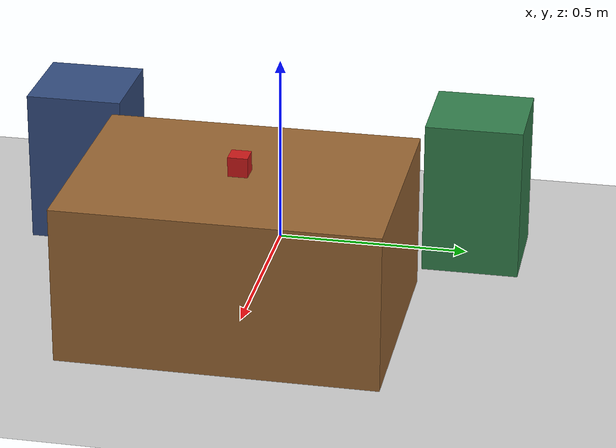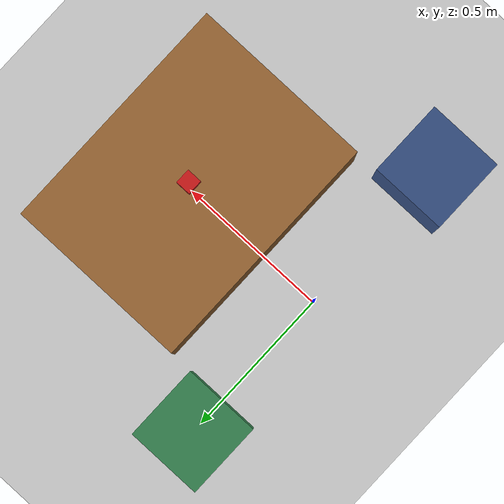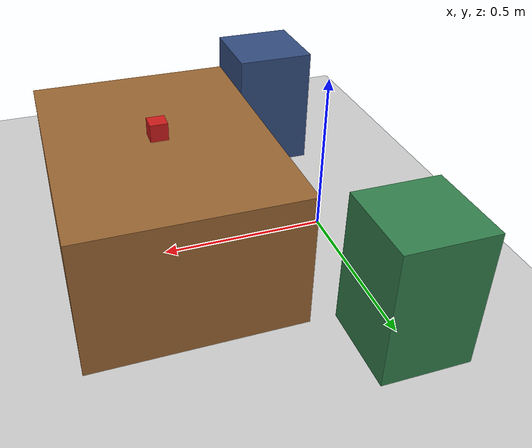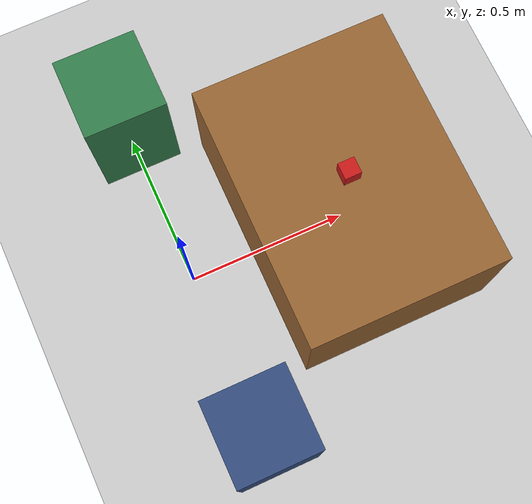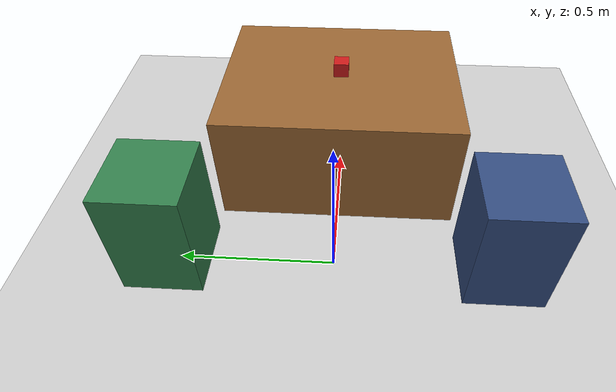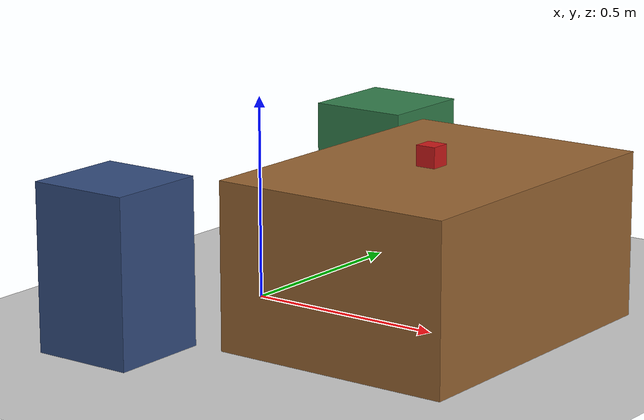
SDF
<?xml version="1.0" ?>
<sdf version="1.8">
  <world name="fr3_world">
    <physics name="1ms" type="ignored">
      <max_step_size>0.001</max_step_size>
      <real_time_factor>0</real_time_factor>
    </physics>
    <plugin
      filename="gz-sim-physics-system"
      name="gz::sim::systems::Physics">
    </plugin>
    <plugin
      filename="gz-sim-user-commands-system"
      name="gz::sim::systems::UserCommands">
    </plugin>
    <plugin
      filename="gz-sim-scene-broadcaster-system"
      name="gz::sim::systems::SceneBroadcaster">
    </plugin>

    <gui fullscreen="0">
      <!-- 3D scene -->
      <plugin filename="MinimalScene" name="3D View">
        <gz-gui>
          <title>3D View</title>
          <property type="bool" key="showTitleBar">false</property>
          <property type="string" key="state">docked</property>
        </gz-gui>

        <engine>ogre2</engine>
        <scene>scene</scene>
        <ambient_light>0.4 0.4 0.4</ambient_light>
        <background_color>0.8 0.8 0.8</background_color>
        <camera_pose>-6 0 6 0 0.5 0</camera_pose>
        <camera_clip>
          <near>0.25</near>
          <far>25000</far>
        </camera_clip>
      </plugin>
      <plugin filename="GzSceneManager" name="Scene Manager">
        <gz-gui>
          <property key="resizable" type="bool">false</property>
          <property key="width" type="double">5</property>
          <property key="height" type="double">5</property>
          <property key="state" type="string">floating</property>
          <property key="showTitleBar" type="bool">false</property>
        </gz-gui>
      </plugin>

      <!-- World control -->
      <plugin filename="WorldControl" name="World control">
        <gz-gui>
          <title>World control</title>
          <property type="bool" key="showTitleBar">false</property>
          <property type="bool" key="resizable">false</property>
          <property type="double" key="height">72</property>
          <property type="double" key="width">121</property>
          <property type="double" key="z">1</property>

          <property type="string" key="state">floating</property>
          <anchors target="3D View">
            <line own="left" target="left"/>
            <line own="bottom" target="bottom"/>
          </anchors>
        </gz-gui>

        <play_pause>true</play_pause>
        <step>true</step>
        <start_paused>true</start_paused>
        <service>/world/fr3_world/control</service>
        <stats_topic>/world/fr3_world/stats</stats_topic>
      </plugin>

      <!-- World statistics -->
      <plugin filename="WorldStats" name="World stats">
        <gz-gui>
          <title>World stats</title>
          <property type="bool" key="showTitleBar">false</property>
          <property type="bool" key="resizable">false</property>
          <property type="double" key="height">110</property>
          <property type="double" key="width">290</property>
          <property type="double" key="z">1</property>

          <property type="string" key="state">floating</property>
          <anchors target="3D View">
            <line own="right" target="right"/>
            <line own="bottom" target="bottom"/>
          </anchors>
        </gz-gui>

        <sim_time>true</sim_time>
        <real_time>true</real_time>
        <real_time_factor>true</real_time_factor>
        <iterations>true</iterations>
        <topic>/world/fr3_world/stats</topic>
      </plugin>
    </gui>

    <light type="directional" name="sun">
      <cast_shadows>true</cast_shadows>
      <pose>0 0 10 0 0 0</pose>
      <diffuse>0.8 0.8 0.8 1</diffuse>
      <specular>0.2 0.2 0.2 1</specular>
      <attenuation>
        <range>1000</range>
        <constant>0.9</constant>
        <linear>0.01</linear>
        <quadratic>0.001</quadratic>
      </attenuation>
      <direction>-0.5 0.1 -0.9</direction>
    </light>

    <model name="ground_plane">
      <static>true</static>
      <link name="link">
        <collision name="collision">
          <geometry>
            <plane><normal>0 0 1</normal><size>100 100</size></plane>
          </geometry>
        </collision>
        <visual name="visual">
          <geometry>
            <plane><normal>0 0 1</normal><size>100 100</size></plane>
          </geometry>
          <material>
            <ambient>0.8 0.8 0.8 1</ambient>
            <diffuse>0.8 0.8 0.8 1</diffuse>
          </material>
        </visual>
      </link>
    </model>

    <model name="table">
      <static>true</static>
      <pose>0.5 0 0.2 0 0 0</pose>
      <link name="link">
        <collision name="collision">
          <geometry>
            <box><size>0.6 0.8 0.4</size></box>
          </geometry>
        </collision>
        <visual name="visual">
          <geometry>
            <box><size>0.6 0.8 0.4</size></box>
          </geometry>
          <material>
            <ambient>0.6 0.4 0.2 1</ambient>
            <diffuse>0.6 0.4 0.2 1</diffuse>
          </material>
        </visual>
      </link>
    </model>

    <!-- Two tables on each side of the robot (90 deg) -->
    <model name="table_left">
      <static>true</static>
      <pose>0.0 0.525 0.2 0 0 0</pose>
      <link name="link">
        <collision name="collision">
          <geometry>
            <box><size>0.25 0.25 0.4</size></box>
          </geometry>
        </collision>
        <visual name="visual">
          <geometry>
            <box><size>0.25 0.25 0.4</size></box>
          </geometry>
          <material>
            <ambient>0.2 0.5 0.3 1</ambient>
            <diffuse>0.2 0.5 0.3 1</diffuse>
          </material>
        </visual>
      </link>
    </model>

    <model name="table_right">
      <static>true</static>
      <pose>0.0 -0.525 0.2 0 0 0</pose>
      <link name="link">
        <collision name="collision">
          <geometry>
            <box><size>0.25 0.25 0.4</size></box>
          </geometry>
        </collision>
        <visual name="visual">
          <geometry>
            <box><size>0.25 0.25 0.4</size></box>
          </geometry>
          <material>
            <ambient>0.2 0.3 0.5 1</ambient>
            <diffuse>0.2 0.3 0.5 1</diffuse>
          </material>
        </visual>
      </link>
    </model>

    <model name="cube">
      <pose>0.5 0 0.425 0 0 0</pose>
      <link name="cube_link">
        <inertial>
          <mass>0.05</mass>
          <inertia>
            <ixx>2.08e-5</ixx><iyy>2.08e-5</iyy><izz>2.08e-5</izz>
            <ixy>0</ixy><ixz>0</ixz><iyz>0</iyz>
          </inertia>
        </inertial>
        <collision name="collision">
          <geometry>
            <box><size>0.05 0.05 0.05</size></box>
          </geometry>
          <surface>
            <friction>
              <ode>
                <mu>1.0</mu>    <!--tunable-->
                <mu2>1.0</mu2>  <!--tunable-->
              </ode>
            </friction>
            <contact>
              <ode>
                <kp>1e5</kp>       <!--tunable-->
                <kd>10</kd>        <!--tunable-->
                <min_depth>0.001</min_depth>
              </ode>
            </contact>
          </surface>
        </collision>
        <visual name="visual">
          <geometry>
            <box><size>0.05 0.05 0.05</size></box>
          </geometry>
          <material>
            <ambient>0.8 0.1 0.1 1</ambient>
            <diffuse>0.8 0.1 0.1 1</diffuse>
          </material>
        </visual>
      </link>

      <!-- Cube position publisher -->
      <plugin filename="gz-sim-odometry-publisher-system" name="gz::sim::systems::OdometryPublisher">
        <dimensions>3</dimensions>
        <odom_frame>fr3_world</odom_frame>
        <robot_base_frame>cube</robot_base_frame>
        <odom_publish_frequency>50</odom_publish_frequency>
      </plugin>
    </model>
  </world>
</sdf>
